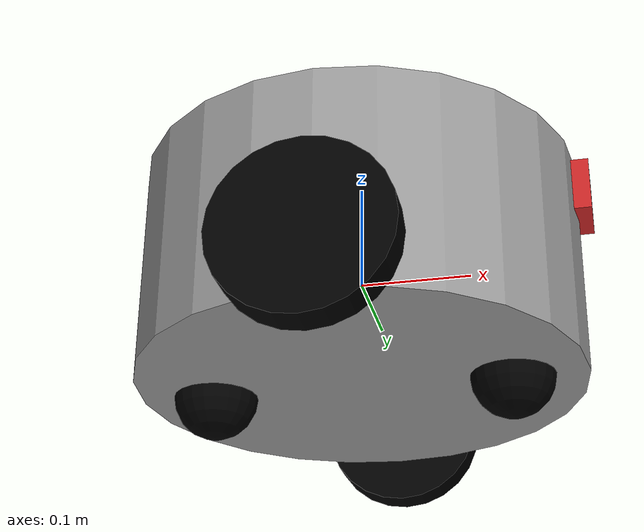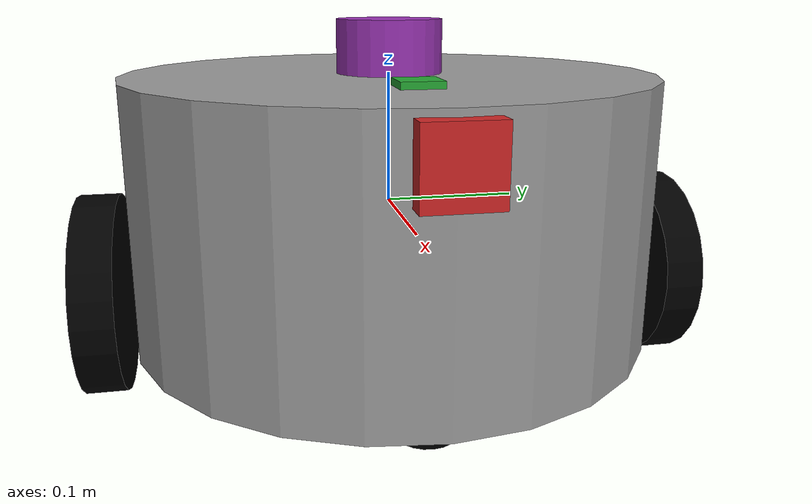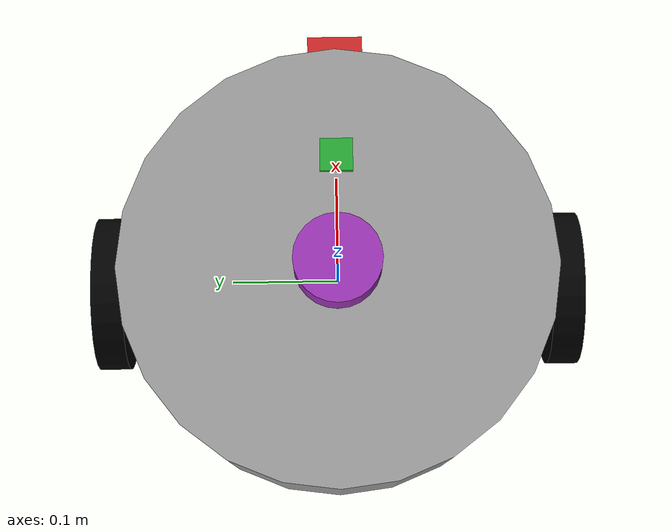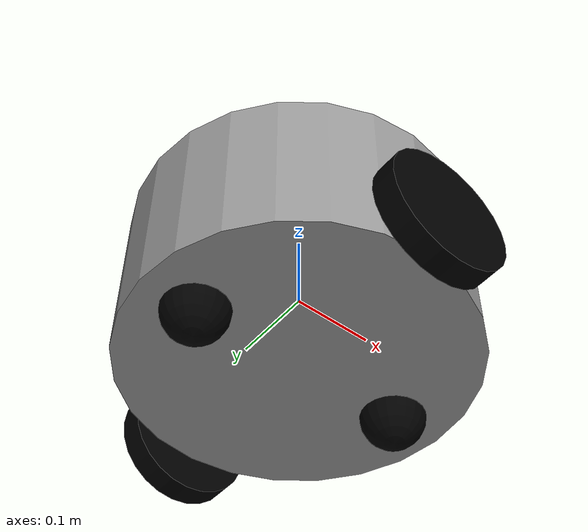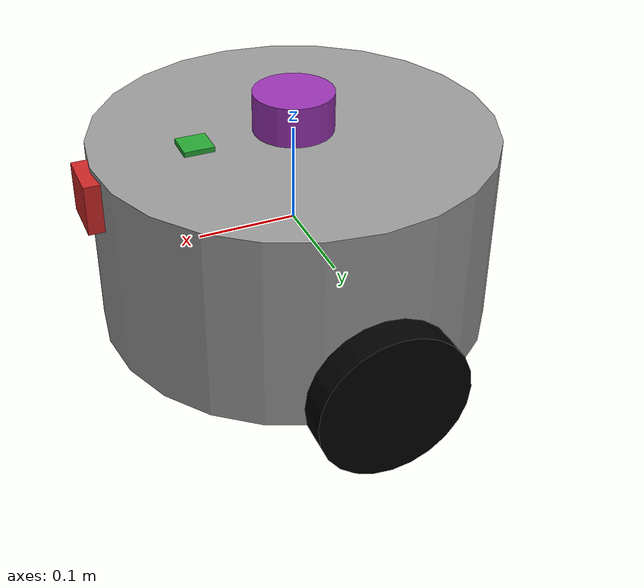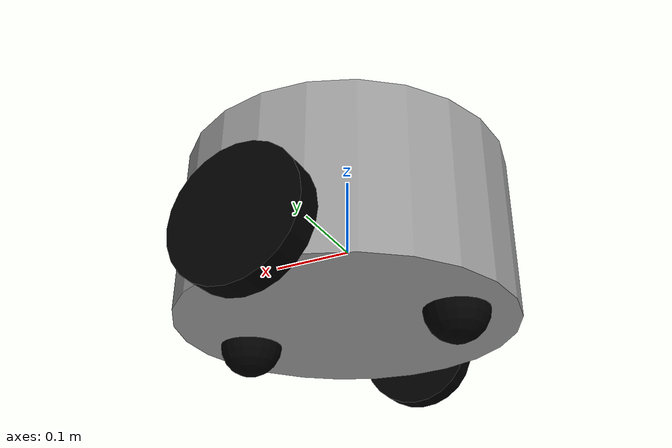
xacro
<?xml version="1.0"?>
<robot name="dribot"
    xmlns:xacro="http://ros.org/wiki/xacro">

    <xacro:include filename="materials.xacro" />
    <xacro:include filename="macros.xacro" />
    <xacro:include filename="wheel.xacro" />
    <xacro:include filename="camera.xacro" />
    <xacro:include filename="lidar.xacro" />
    <xacro:include filename="imu.xacro" />

    <xacro:property name="base_diameter" value="0.4" />
    <xacro:property name="base_height" value="0.2" />
    <xacro:property name="base_weight" value="18.0" />

    <xacro:property name="driving_wheel_diameter" value="0.15" />
    <xacro:property name="driving_wheel_thickness" value="0.03" />
    <xacro:property name="driving_wheel_weight" value="0.5" />
    <xacro:property name="driving_wheel_base_gap" value="0.01" />

    <xacro:property name="caster_wheel_weight" value="0.1" />

    <link name="base_link">
        <visual>
            <origin xyz="0 0 0" rpy="0 0 0"/>
            <geometry>
                <cylinder radius="${base_diameter/2}" length="${base_height}"/>
            </geometry>
            <material name="gray"/>
        </visual>
        <collision>
            <origin xyz="0 0 0" rpy="0 0 0"/>
            <geometry>
                <cylinder radius="${base_diameter/2}" length="${base_height}"/>
            </geometry>
        </collision>
        <xacro:cylinder_inertia m="${base_weight}" r="${base_diameter/2}" h="${base_height}" roll="0"/>
    </link>

    <link name="base_footprint">
    </link>

    <joint name="base_joint" type="fixed">
        <parent link="base_link"/>
        <child link="base_footprint"/>
        <origin xyz="0.0 0.0 ${-(base_height/2+driving_wheel_diameter/4)}" rpy="0 0 0"/>
    </joint>

    <xacro:driving_wheel suffix="left" reflect="1"/>
    <xacro:driving_wheel suffix="right" reflect="-1"/>

    <xacro:caster_wheel suffix="front" reflect="1"/>
    <xacro:caster_wheel suffix="back" reflect="-1"/>

    <xacro:camera_macro parent="base_link" x_pos="${base_diameter/2}" y_pos="0" z_pos="${base_height/2}" />

    <xacro:lidar parent="base_link" x_pos="0" y_pos="0" z_pos="${base_height/2}" />

    <xacro:imu_macro parent="base_link" x_pos="0.1" y_pos="0" z_pos="${base_height/2}" />

    <xacro:include filename="plugins.xacro" />

</robot>

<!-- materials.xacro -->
<robot xmlns:xacro="http://ros.org/wiki/xacro">

    <material name="gray">
        <color rgba="0.60 0.60 0.60 1"/>
    </material>

    <material name="black">
        <color rgba="0 0 0 1"/>
    </material>

</robot>

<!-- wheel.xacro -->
<robot xmlns:xacro="http://ros.org/wiki/xacro">

    <xacro:macro name="driving_wheel" params="suffix reflect">
        <link name="driving_wheel_${suffix}">
            <visual>
                <origin xyz="0 0 0" rpy="${pi/2} 0 0" />
                <geometry>
                    <cylinder radius="${driving_wheel_diameter/2}" length="${driving_wheel_thickness}"/>
                </geometry>
                <material name="black"/>
            </visual>
            <collision>
                <origin xyz="0 0 0" rpy="${pi/2} 0 0" />
                <contact_coefficients mu="100.0" kp="0.0" kd="0.0" />
                <geometry>
                    <cylinder radius="${driving_wheel_diameter/2}" length="${driving_wheel_thickness}"/>
                </geometry>
            </collision>
            <xacro:cylinder_inertia m="${driving_wheel_weight}" r="${driving_wheel_diameter/2}" h="${driving_wheel_thickness}" roll="${pi/2}"/>
        </link>

        <joint name="driving_wheel_${suffix}_joint" type="continuous">
            <axis xyz="0 1 0" rpy="0 0 0" />
            <parent link="base_link"/>
            <child link="driving_wheel_${suffix}"/>
            <origin xyz="0 ${(base_diameter+(driving_wheel_thickness)+driving_wheel_base_gap)/2*reflect} -${base_height/2-driving_wheel_diameter/4}" rpy="0 0 0"/>
        </joint>

        <gazebo reference="driving_wheel_${suffix}">
            <mu1 value="0.50"/>
            <mu2 value="3.0"/>
            <kp value="10000000.0" />
            <kd value="100.0" />
            <fdir1 value="0 0 1"/>
            <material>Gazebo/Black</material>
        </gazebo>

    </xacro:macro>

    <xacro:macro name="caster_wheel" params="suffix reflect">
        <link name="caster_wheel_${suffix}">
            <visual>
                <origin xyz="0 0 0" rpy="0 0 0" />
                <geometry>
                    <sphere radius="${driving_wheel_diameter/4}" />
                </geometry>
                <material name="black"/>
            </visual>
            <collision>
                <origin xyz="0 0 0" rpy="0 0 0" />
                <contact_coefficients mu="0.0" kp="0.0" kd="0.0" />
                <geometry>
                    <sphere radius="${driving_wheel_diameter/4}" />
                </geometry>
            </collision>
            <xacro:sphere_inertia m="${caster_wheel_weight}" r="${driving_wheel_diameter/2}"/>
        </link>

        <joint name="caster_wheel_${suffix}_joint" type="fixed">
            <parent link="base_link"/>
            <child link="caster_wheel_${suffix}"/>
            <origin xyz="${base_diameter/3*reflect} 0 -${base_height/2}" rpy="0 0 0"/>
        </joint>

        <gazebo reference="caster_wheel_${suffix}">
            <mu1 value="0.0"/>
            <mu2 value="0.0"/>
            <kp value="10000000.0" />
            <kd value="100.0" />
            <fdir1 value="0 0 1"/>
            <material>Gazebo/Red</material>
        </gazebo>

    </xacro:macro>

</robot>

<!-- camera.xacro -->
<robot xmlns:xacro="http://ros.org/wiki/xacro">

    <xacro:property name="camera_thickness" value="0.025" />
    <xacro:property name="camera_width" value="0.05" />
    <xacro:property name="camera_height" value="0.05" />

    <xacro:macro name="camera_macro" params="parent x_pos y_pos z_pos">
        <link name="camera_link">
            <visual>
                <origin xyz="0 0 0" rpy="0 0 0" />
                <geometry>
                    <box size="${camera_thickness} ${camera_width} ${camera_height}"/>
                </geometry>
            </visual>
            <collision>
                <origin xyz="0 0 0" rpy="0 0 0" />
                <geometry>
                    <box size="${camera_thickness} ${camera_width} ${camera_height}"/>
                </geometry>
            </collision>
        </link>
        <joint name="camera_joint" type="fixed">
            <parent link="${parent}"/>
            <child link="camera_link"/>
            <origin xyz="${x_pos} ${y_pos} ${z_pos-camera_height/2-0.005}" rpy="0 0 0"/>
        </joint>

        <gazebo reference="camera_link">
            <sensor type="camera" name="camera">
                <update_rate>30.0</update_rate>
                <camera>
                    <horizontal_fov>1.3962634</horizontal_fov>
                    <image>
                        <width>640</width>
                        <height>480</height>
                        <format>R8G8B8</format>
                    </image>
                    <clip>
                        <near>0.02</near>
                        <far>300</far>
                    </clip>
                    <noise>
                        <type>gaussian</type>
                        <mean>0.0</mean>
                        <stddev>0.007</stddev>
                    </noise>
                </camera>
                <plugin name="camera_controller" filename="libgazebo_ros_camera.so">
                    <alwaysOn>true</alwaysOn>
                    <updateRate>0.0</updateRate>
                    <cameraName>camera</cameraName>
                    <imageTopicName>image_raw</imageTopicName>
                    <cameraInfoTopicName>camera_info</cameraInfoTopicName>
                    <frameName>camera_link</frameName>
                    <hackBaseline>0.07</hackBaseline>
                    <distortionK1>0.0</distortionK1>
                    <distortionK2>0.0</distortionK2>
                    <distortionK3>0.0</distortionK3>
                    <distortionT1>0.0</distortionT1>
                    <distortionT2>0.0</distortionT2>
                </plugin>
            </sensor>
            <material>Gazebo/Red</material>
        </gazebo>

    </xacro:macro>
</robot>

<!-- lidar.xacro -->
<robot xmlns:xacro="http://ros.org/wiki/xacro">

    <xacro:property name="lidar_radius" value="0.04" />
    <xacro:property name="lidar_height" value="0.04" />

    <xacro:macro name="lidar" params="parent x_pos y_pos z_pos">
        <link name="lidar_link">
            <visual>
                <origin xyz="0 0 0" rpy="0 0 0" />
                <geometry>
                    <cylinder radius="${lidar_radius}" length="${lidar_height}"/>
                </geometry>
            </visual>
            <collision>
                <origin xyz="0 0 0" rpy="0 0 0" />
                <geometry>
                    <cylinder radius="${lidar_radius}" length="${lidar_height}"/>
                </geometry>
            </collision>
        </link>
        <joint name="lidar_joint" type="fixed">
            <parent link="${parent}"/>
            <child link="lidar_link"/>
            <origin xyz="${x_pos} ${y_pos} ${z_pos+lidar_height/2}" rpy="0 0 0"/>
        </joint>

        <gazebo reference="lidar_link">
            <sensor name="lidar" type="ray">
                <always_on>true</always_on>
                <visualize>false</visualize>
                <pose>0.0 0 0.0 0 0 0</pose>
                <update_rate>10</update_rate>
                <ray>
                    <scan>
                        <horizontal>
                            <samples>667</samples>
                            <resolution>0.9</resolution>
                            <min_angle>0.000000</min_angle>
                            <max_angle>6.280000</max_angle>
                        </horizontal>
                    </scan>
                    <range>
                        <min>0.200000</min>
                        <max>16</max>
                        <resolution>0.9</resolution>
                    </range>
                    <noise>
                        <type>gaussian</type>
                        <mean>0.0</mean>
                        <stddev>0.01</stddev>
                    </noise>
                </ray>
                <plugin name="bytes_laserscan" filename="libgazebo_ros_ray_sensor.so">
                    <ros>
                        <namespace>/</namespace>
                        <remapping>~/out:=scan</remapping>
                    </ros>
                    <output_type>sensor_msgs/LaserScan</output_type>
                </plugin>
            </sensor>
            <material>Gazebo/Purple</material>
        </gazebo>
    </xacro:macro>
</robot>

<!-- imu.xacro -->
<robot xmlns:xacro="http://ros.org/wiki/xacro">

    <xacro:property name="imu_width" value="0.03" />
    <xacro:property name="imu_height" value="0.01" />

    <xacro:macro name="imu_macro" params="parent x_pos y_pos z_pos">
        <link name="imu_link">
            <visual>
                <origin xyz="0 0 0" rpy="0 0 0" />
                <geometry>
                    <box size="${imu_width} ${imu_width} ${imu_height}"/>
                </geometry>
            </visual>
            <collision>
                <origin xyz="0 0 0" rpy="0 0 0" />
                <geometry>
                    <box size="${imu_width} ${imu_width} ${imu_height}"/>
                </geometry>
            </collision>
        </link>
        <joint name="imu_joint" type="fixed">
            <parent link="${parent}"/>
            <child link="imu_link"/>
            <origin xyz="${x_pos} ${y_pos} ${z_pos}" rpy="0 0 0"/>
        </joint>

        <gazebo reference="imu_link">
            <sensor name="br_imu" type="imu">
                <always_on>true</always_on>
                <update_rate>100</update_rate>
                <imu>
                    <angular_velocity>
                        <x>
                            <noise type="gaussian">
                                <mean>0.0</mean>
                                <stddev>2e-4</stddev>
                            </noise>
                        </x>
                        <y>
                            <noise type="gaussian">
                                <mean>0.0</mean>
                                <stddev>2e-4</stddev>
                            </noise>
                        </y>
                        <z>
                            <noise type="gaussian">
                                <mean>0.0</mean>
                                <stddev>2e-4</stddev>
                            </noise>
                        </z>
                    </angular_velocity>
                    <linear_acceleration>
                        <x>
                            <noise type="gaussian">
                                <mean>0.0</mean>
                                <stddev>1.7e-2</stddev>
                            </noise>
                        </x>
                        <y>
                            <noise type="gaussian">
                                <mean>0.0</mean>
                                <stddev>1.7e-2</stddev>
                            </noise>
                        </y>
                        <z>
                            <noise type="gaussian">
                                <mean>0.0</mean>
                                <stddev>1.7e-2</stddev>
                            </noise>
                        </z>
                    </linear_acceleration>
                </imu>
                <plugin name="bytes_imu" filename="libgazebo_ros_imu_sensor.so">
                    <ros>
                        <namespace>imu</namespace>
                        <remapping>~/out:=data</remapping>
                    </ros>
                    <initial_orientation_as_reference>false</initial_orientation_as_reference>
                </plugin>
            </sensor>
            <material>Gazebo/Green</material>
        </gazebo>

    </xacro:macro>
</robot>
